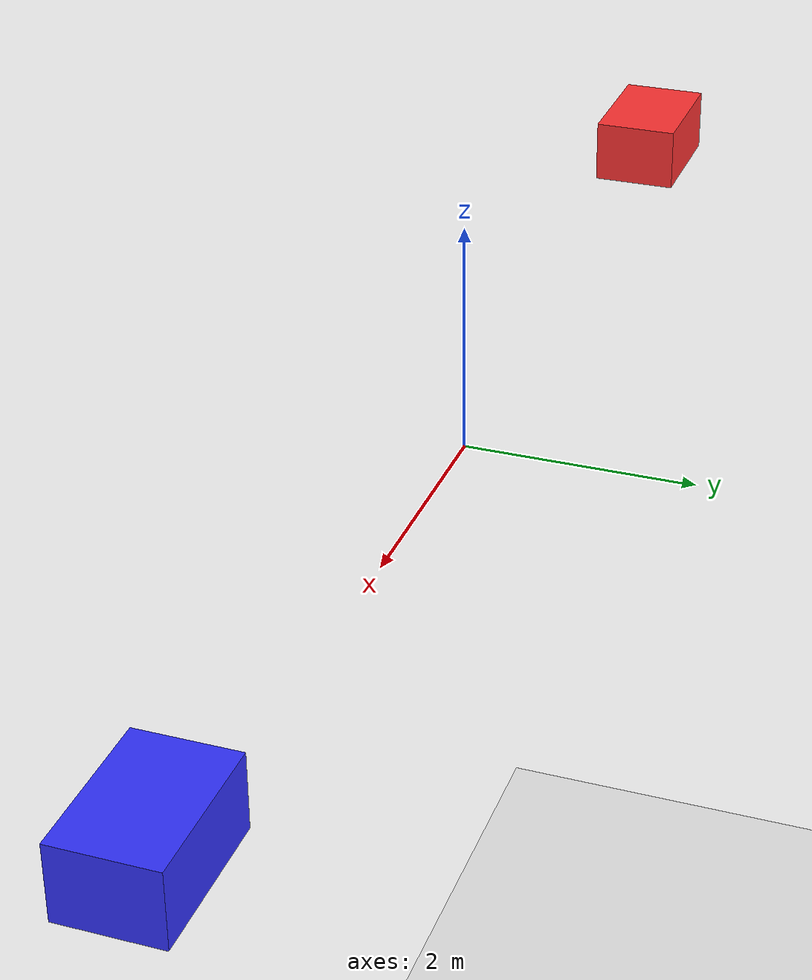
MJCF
<mujoco>
  <option gravity="0 0 -9.81"/>
  <worldbody>
    <body name="track" pos="0 0 -10">
      <geom type="plane" size="50 50 0.1" rgba="0.9 0.9 0.9 1" friction="0.01 0.01 0.01"/>
    </body>
    <body name="cart_1" pos="-6 0 0.5">
      <geom type="box" size="0.6 0.4 0.3" mass="5" rgba="1 0.2 0.2 1"/>
      <joint type="free"/>
    </body>
    <body name="cart_2" pos="6 0 0.5">
      <geom type="box" size="0.6 0.4 0.3" mass="3" rgba="0.2 0.2 1 1"/>
      <joint type="free"/>
    </body>
  </worldbody>
</mujoco>
